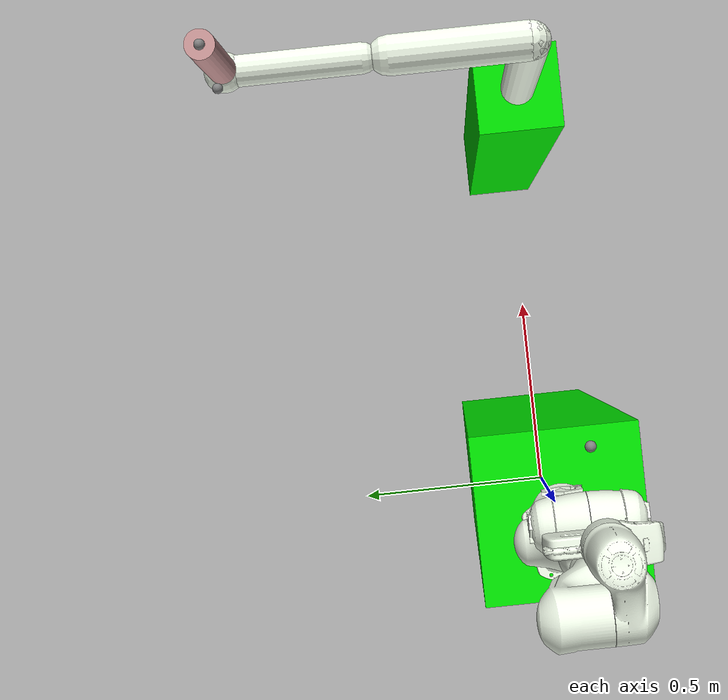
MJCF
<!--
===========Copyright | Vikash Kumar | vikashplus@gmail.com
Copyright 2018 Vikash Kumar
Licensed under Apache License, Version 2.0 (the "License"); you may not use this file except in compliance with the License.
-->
<mujoco model="franka_panda v200">
    <include file="assets/basic_scene.xml"/>
    <include file="assets/assets.xml"/>
    <compiler meshdir="meshes/"/>

    <worldbody>
        <include file="assets/chain_simple_arm.xml"/>
        <include file="assets/chain0.xml"/>
    </worldbody>

    <include file='assets/actuator0.xml'/>

</mujoco>

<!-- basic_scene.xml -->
<mujocoinclude>

    <worldbody>
        <light directional="false" diffuse=".8 .8 .8" specular="0.3 0.3 0.3" pos="1  1 3" dir="-1 -1 -3"/>
        <light directional="false" diffuse=".8 .8 .8" specular="0.3 0.3 0.3" pos="1 -1 3" dir="-1 1 -3"/>
        <light directional="false" diffuse=".8 .8 .8" specular="0.3 0.3 0.3" pos="-1 0 3" dir="1 0 -3" />
    </worldbody>
</mujocoinclude>

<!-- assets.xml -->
<mujocoinclude>
	<compiler  angle="radian" meshdir="meshes/" settotalmass="18.5"/>
    <asset>
        <mesh name="link0_col" file="collision/link0.stl"/>
        <mesh name="link1_col" file="collision/link1.stl"/>
        <mesh name="link2_col" file="collision/link2.stl"/>
        <mesh name="link3_col" file="collision/link3.stl"/>
        <mesh name="link4_col" file="collision/link4.stl"/>
        <mesh name="link5_col" file="collision/link5.stl"/>
        <mesh name="link6_col" file="collision/link6.stl"/>
        <mesh name="link7_col" file="collision/link7.stl"/>
        <mesh name="hand_col" file="collision/hand.stl"/>
        <mesh name="finger_col" file="collision/finger.stl"/>
        <mesh name="link0_viz" file="visual/link0.stl"/>
        <mesh name="link1_viz" file="visual/link1.stl"/>
        <mesh name="link2_viz" file="visual/link2.stl"/>
        <mesh name="link3_viz" file="visual/link3.stl"/>
        <mesh name="link4_viz" file="visual/link4.stl"/>
        <mesh name="link5_viz" file="visual/link5.stl"/>
        <mesh name="link6_viz" file="visual/link6.stl"/>
        <mesh name="link7_viz" file="visual/link7.stl"/>
        <mesh name="hand_viz"   file="visual/hand.stl"/>
        <mesh name="finger_viz" file="visual/finger.stl"/>

    </asset>

    <default>
        <default class="panda">
            <joint pos="0 0 0" axis="0 0 1" limited="true"/>
            <motor forcelimited="false" ctrllimited="true"/>
            <default class="panda_viz">
                <geom contype="0" conaffinity="0" group="0" type="mesh" rgba=".95 .99 .92 1"/>
            </default>

            <default class="panda_col">
                <geom contype="1" conaffinity="1" group="3" type="mesh" rgba=".5 .6 .7 1"/>
            </default>
            <default class="panda_arm">
                <joint damping="50"/>
            </default>
             <default class="panda_forearm">
                <joint damping="50"/>
            </default>
             <default class="panda_finger">
                <joint damping="1000"/>
            </default>
        </default>
    </default>
</mujocoinclude>

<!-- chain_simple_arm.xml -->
<mujocoinclude>
    <body pos="0 0 0">
         <geom type="box" size=".2 .2 0.7" rgba="0 .9 0 1"/>
  </body>
  <body name='torso' pos='1 0 0' quat='0 0 0 1'>
      <geom type="box" size=".1 .1 0.7" rgba="0 .9 0 1"/>
      <geom name='base' type='capsule' class="panda_viz" fromto='0 0 0.7 0 0 1.2'  size='0.04 0.16' />
      <body name='right_upper_arm' pos='0 0 1.2' >
          <joint name='right_shoulder1' type='hinge' pos='0 0 0' axis='1 0 0' class="panda_arm" range='-85 60' stiffness='0' armature='0.0068' />
          <joint name='right_shoulder2' type='hinge' pos='0 0 0' axis='0 0 1' class="panda_arm" range='-85 60' stiffness='0'  armature='0.0051' />
          <geom name='right_uarm1' type='capsule' class="panda_viz" fromto='0 0 0 0 -0.28 0'  size='0.04 0.16' />
          <body name='right_lower_arm' pos='0 -0.3 0' >
               <joint name='right_elbow' type='hinge' pos='0 0 0' axis='0 0 1' class="panda_arm" range='-90 50'  stiffness='0' armature='0.0028' />
               <joint name='right_elbow2' type='hinge' pos='0 0 0' axis='0 1 0' class="panda_arm" range='-90 90'  stiffness='0' armature='0.0028' />

              <geom name='right_larm' type='capsule' class="panda_viz" fromto='0 -0.03 0 0 -0.3 0'  size='0.031' />
              <geom name='right_hand' type='sphere' class="panda_viz" pos='0 -0.3 0'  size='0.04'/>
              <geom name="ball_geom" rgba="0.8 0.6 0.6 1" type="cylinder" fromto="0.0 -0.3 0.25 0.0 -0.3 -0.05" size="0.028" density="2000" contype="2" conaffinity="1" />
              <site name="hand_down" pos='0 -0.3 0.25' size="0.01" />
              <site name="hand_up" pos='0 -0.3 -0.05' size="0.01" />
              <site name="hand_back" pos='0.05 -0.3 0.1' size="0.01" />
              <site name="object_down" pos='0 -0.3 0.25' size="0.01" />
              <site name="object_up" pos='0 -0.3 -0.05' size="0.01" />
              <site name="object_back" pos='0.05 -0.3 0.1' size="0.01" />

        </body>
    </body>
  </body>
</mujocoinclude>

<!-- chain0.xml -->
<mujocoinclude>
	<body name="panda0_link0" childclass="panda" pos="0 0 0.7" >
        <geom class="panda_viz" mesh="link0_viz"/>
        <geom class="panda_col" mesh="link0_col"/>
        <body name="panda0_link1" pos="0 0 0.333">
            <joint name="panda0_joint1" range="-2.9671 2.9671" class="panda_arm"/>
            <geom class="panda_viz" mesh="link1_viz"/>
            <geom class="panda_col" mesh="link1_col"/>
            <body name="panda0_link2" pos="0 0 0" quat="0.707107 -0.707107 0 0">
                <joint name="panda0_joint2" range="-1.8326 1.8326" class="panda_arm"/>
                <geom class="panda_viz" mesh="link2_viz"/>
                <geom class="panda_col" mesh="link2_col"/>
                <body name="panda0_link3" pos="0 -0.316 0" quat="0.707107 0.707107 0 0">
                    <joint name="panda0_joint3" range="-2.9671 2.9671" class="panda_arm"/>
                    <geom class="panda_viz" mesh="link3_viz"/>
                    <geom class="panda_col" mesh="link3_col"/>
                    <body name="panda0_link4" pos="0.0825 0 0" quat="0.707107 0.707107 0 0">
                        <joint name="panda0_joint4" range="-3.1416 0" class="panda_arm"/>
                        <geom class="panda_viz" mesh="link4_viz"/>
                        <geom class="panda_col" mesh="link4_col"/>
                        <body name="panda0_link5" pos="-0.0825 0.384 0" quat="0.707107 -0.707107 0 0">
                            <joint name="panda0_joint5" range="-2.9671 2.9671" class="panda_forearm"/>
                            <geom class="panda_viz" mesh="link5_viz"/>
                            <geom class="panda_col" mesh="link5_col"/>
                            <body name="panda0_link6" pos="0 0 0" quat="0.707107 0.707107 0 0">
                                <joint name="panda0_joint6" range="-0.0873 3.8223" class="panda_forearm"/>
                                <geom class="panda_viz" mesh="link6_viz"/>
                                <geom class="panda_col" mesh="link6_col"/>
                                <body name="panda0_link7" pos="0.088 0 0" quat="0.707107 0.707107 0 0">
                                    <joint name="panda0_joint7" range="-2.9671 2.9671" class="panda_forearm"/>
                                    <geom class="panda_viz" quat="0.92388 0 0 0.382683" mesh="link7_viz"/>
                                    <geom class="panda_col" quat="0.92388 0 0 0.382683" mesh="link7_col"/>
                                    <geom pos="0 0 0.107"  class="panda_viz" mesh="hand_viz"/>
                                    <geom pos="0 0 0.107"  class="panda_col" mesh="hand_col"/>
																		<site name="gripper_bottom" pos="-0.15 0 0.2"  size="0.01" />
																		<site name="gripper_top" pos="0.15 0 0.2"  size="0.01" />
                                                                        <site name="gripper_back" pos="0 0 0.15"  size="0.01" />
																		<body name="panda0_leftfinger" pos="0 0 0.1654" >
																				<joint name="panda0_finger_joint1"  axis="0 1 0" type="slide" range="0 0.04" class="panda_finger"/>
                                        <geom class="panda_viz" mesh="finger_viz"/>
                                        <geom class="panda_col" mesh="finger_col"/>
                                    </body>
                                    <body name="panda0_rightfinger" pos="0 0 0.1654" >
                                        <joint name="panda0_finger_joint2" axis="0 -1 0" type="slide" range="0 0.04" class="panda_finger"/>
                                        <geom quat="0 0 0 1" class="panda_viz" mesh="finger_viz"/>
                                        <geom quat="0 0 0 1" class="panda_col" mesh="finger_col"/>
																		</body>
                                </body>
                            </body>
                        </body>
                    </body>
                </body>
            </body>
        </body>
    </body>

</mujocoinclude>

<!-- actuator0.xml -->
<mujocoinclude>
	<actuator>
        <motor name="panda0_joint1" joint="panda0_joint1" class="panda" ctrlrange="-180 180" /> <!-- velocity="2.1750" -->
        <motor name="panda0_joint2" joint="panda0_joint2" class="panda" ctrlrange="-180 180" /> <!-- velocity="2.1750" -->
        <motor name="panda0_joint3" joint="panda0_joint3" class="panda" ctrlrange="-180 180" /> <!-- velocity="2.1750" -->
        <motor name="panda0_joint4" joint="panda0_joint4" class="panda" ctrlrange="-180 180" /> <!-- velocity="2.1750" -->
        <motor name="panda0_joint5" joint="panda0_joint5" class="panda" ctrlrange="-180 180" /> <!-- velocity="2.6100" -->
        <motor name="panda0_joint6" joint="panda0_joint6" class="panda" ctrlrange="-180 180" /> <!-- velocity="2.6100" -->
        <motor name="panda0_joint7" joint="panda0_joint7" class="panda" ctrlrange="-180 180" /> <!-- velocity="2.9671" -->
    </actuator>
</mujocoinclude>
